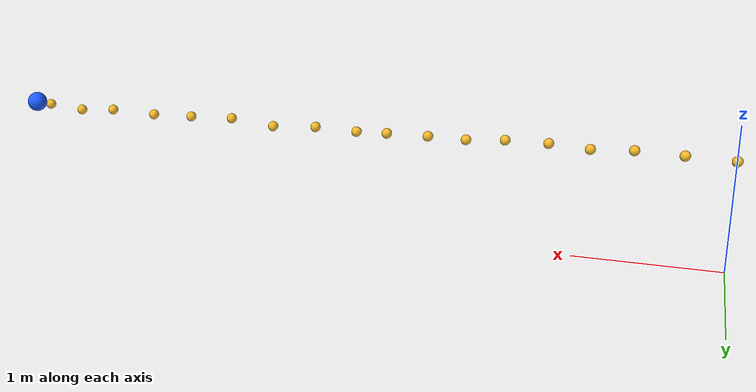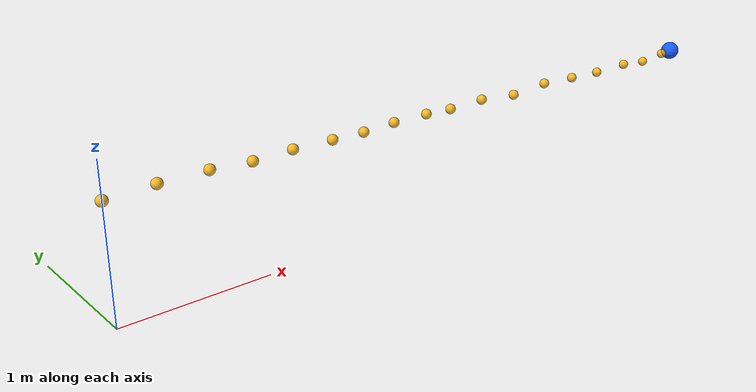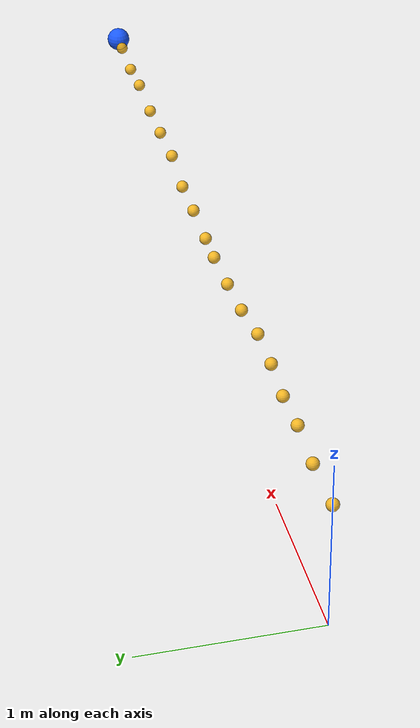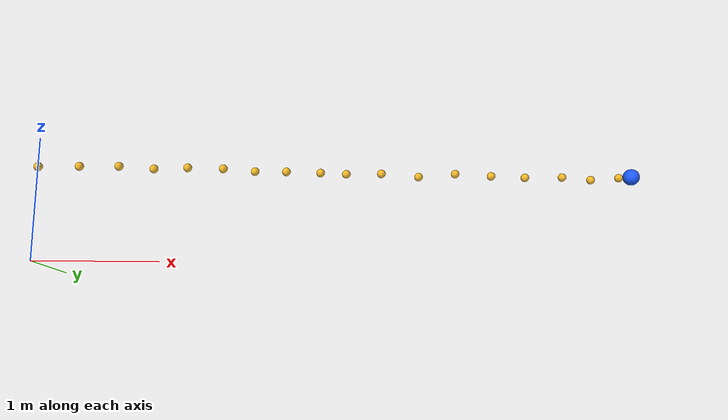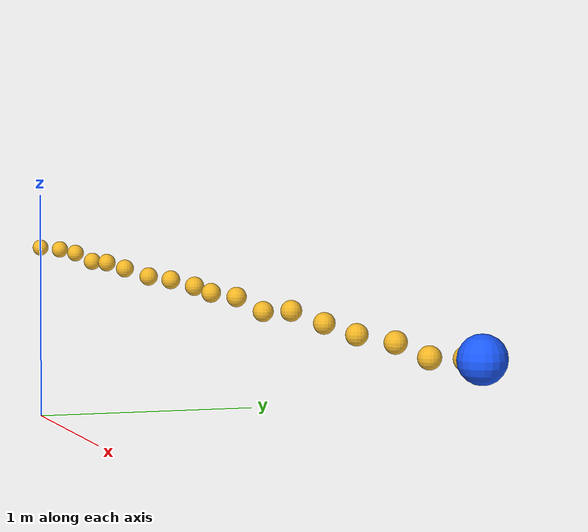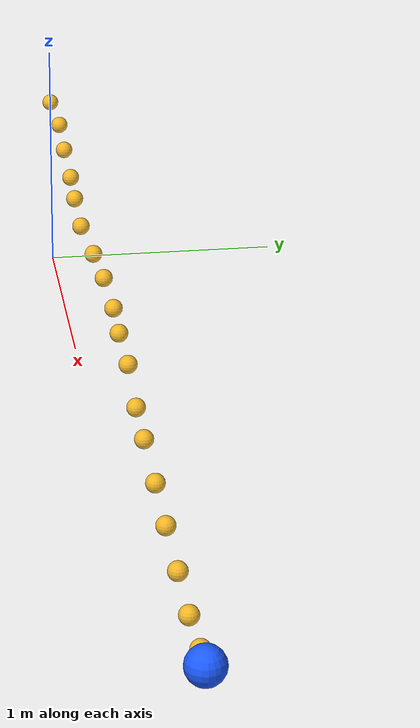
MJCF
<mujoco model="kimodo trajectory markers">
  <worldbody>
    <geom name="kimodo_path_0000" type="sphere" size="0.035" pos="0.000000 0.000000 0.765219" rgba="1 0.72 0.05 0.85"/>
    <geom name="kimodo_path_0001" type="sphere" size="0.035" pos="0.320481 0.009583 0.776707" rgba="1 0.72 0.05 0.85"/>
    <geom name="kimodo_path_0002" type="sphere" size="0.035" pos="0.637823 -0.000945 0.781616" rgba="1 0.72 0.05 0.85"/>
    <geom name="kimodo_path_0003" type="sphere" size="0.035" pos="0.919373 -0.001340 0.765429" rgba="1 0.72 0.05 0.85"/>
    <geom name="kimodo_path_0004" type="sphere" size="0.035" pos="1.192831 -0.012043 0.778872" rgba="1 0.72 0.05 0.85"/>
    <geom name="kimodo_path_0005" type="sphere" size="0.035" pos="1.482871 -0.016071 0.775650" rgba="1 0.72 0.05 0.85"/>
    <geom name="kimodo_path_0006" type="sphere" size="0.035" pos="1.743744 0.006748 0.762590" rgba="1 0.72 0.05 0.85"/>
    <geom name="kimodo_path_0007" type="sphere" size="0.035" pos="2.003268 0.019511 0.768908" rgba="1 0.72 0.05 0.85"/>
    <geom name="kimodo_path_0008" type="sphere" size="0.035" pos="2.290272 0.025148 0.766706" rgba="1 0.72 0.05 0.85"/>
    <geom name="kimodo_path_0009" type="sphere" size="0.035" pos="2.506968 0.021264 0.759804" rgba="1 0.72 0.05 0.85"/>
    <geom name="kimodo_path_0010" type="sphere" size="0.035" pos="2.805021 0.020749 0.768819" rgba="1 0.72 0.05 0.85"/>
    <geom name="kimodo_path_0011" type="sphere" size="0.035" pos="3.121711 0.012323 0.745930" rgba="1 0.72 0.05 0.85"/>
    <geom name="kimodo_path_0012" type="sphere" size="0.035" pos="3.437451 0.002462 0.775841" rgba="1 0.72 0.05 0.85"/>
    <geom name="kimodo_path_0013" type="sphere" size="0.035" pos="3.750562 0.003003 0.763563" rgba="1 0.72 0.05 0.85"/>
    <geom name="kimodo_path_0014" type="sphere" size="0.035" pos="4.045806 0.000807 0.756164" rgba="1 0.72 0.05 0.85"/>
    <geom name="kimodo_path_0015" type="sphere" size="0.035" pos="4.374687 -0.002785 0.764831" rgba="1 0.72 0.05 0.85"/>
    <geom name="kimodo_path_0016" type="sphere" size="0.035" pos="4.629797 -0.000788 0.746777" rgba="1 0.72 0.05 0.85"/>
    <geom name="kimodo_path_0017" type="sphere" size="0.035" pos="4.885152 0.000237 0.770313" rgba="1 0.72 0.05 0.85"/>
    <geom name="kimodo_path_0018" type="sphere" size="0.035" pos="5.000000 0.000000 0.780000" rgba="1 0.72 0.05 0.85"/>
    <geom name="kimodo_path_0019" type="sphere" size="0.035" pos="5.000000 0.000000 0.780000" rgba="1 0.72 0.05 0.85"/>
    <geom name="kimodo_path_0020" type="sphere" size="0.035" pos="5.000000 0.000000 0.780000" rgba="1 0.72 0.05 0.85"/>
    <geom name="kimodo_path_0021" type="sphere" size="0.035" pos="5.000000 0.000000 0.780000" rgba="1 0.72 0.05 0.85"/>
    <geom name="kimodo_path_0022" type="sphere" size="0.035" pos="5.000000 0.000000 0.780000" rgba="1 0.72 0.05 0.85"/>
    <geom name="kimodo_path_0023" type="sphere" size="0.035" pos="5.000000 0.000000 0.780000" rgba="1 0.72 0.05 0.85"/>
    <geom name="kimodo_path_0024" type="sphere" size="0.035" pos="5.000000 0.000000 0.780000" rgba="1 0.72 0.05 0.85"/>
    <geom name="kimodo_path_0025" type="sphere" size="0.035" pos="5.000000 0.000000 0.780000" rgba="1 0.72 0.05 0.85"/>
    <geom name="kimodo_path_0026" type="sphere" size="0.035" pos="5.000000 0.000000 0.780000" rgba="1 0.72 0.05 0.85"/>
    <geom name="kimodo_path_0027" type="sphere" size="0.035" pos="5.000000 0.000000 0.780000" rgba="1 0.72 0.05 0.85"/>
    <geom name="kimodo_path_0028" type="sphere" size="0.035" pos="5.000000 0.000000 0.780000" rgba="1 0.72 0.05 0.85"/>
    <geom name="kimodo_path_0029" type="sphere" size="0.035" pos="5.000000 0.000000 0.780000" rgba="1 0.72 0.05 0.85"/>
    <geom name="kimodo_path_0030" type="sphere" size="0.035" pos="5.000000 0.000000 0.780000" rgba="1 0.72 0.05 0.85"/>
    <geom name="kimodo_target" type="sphere" size="0.07" pos="5.000000 0.000000 0.780000" rgba="0.1 0.35 1 1"/>
  </worldbody>
</mujoco>
